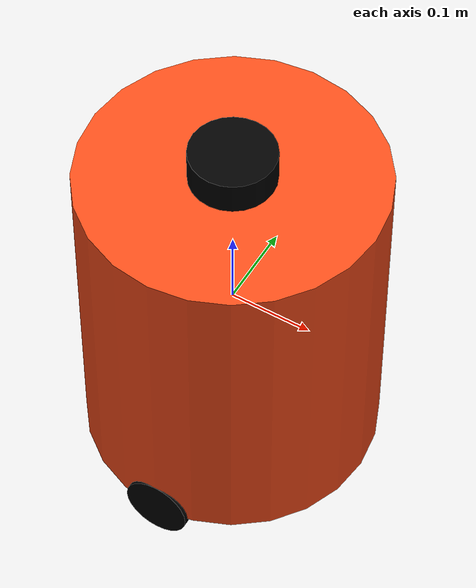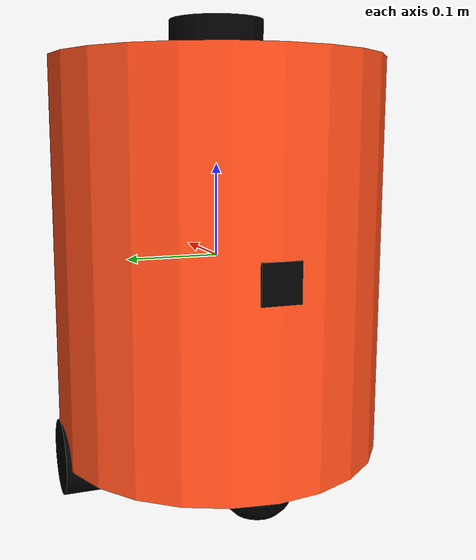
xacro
<?xml version="1.0"?>
<robot xmlns:xacro="http://www.ros.org/wiki/xacro"  name="tb2_master">

    <xacro:include filename="robot_core.xacro"/>

    <xacro:include filename="gazebo_control.xacro"/>

    <xacro:include filename="lidar.xacro"/>

    <xacro:include filename="depth_camera.xacro"/>

</robot>

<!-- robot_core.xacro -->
<robot xmlns:xacro="http://www.ros.org/wiki/xacro">

	<xacro:include filename="inertial_macros.xacro" />

    <material name="white">
		<color rgba="1 1 1 1" />
    </material>

    <material name="red">
		<color rgba="1 0 0 1" />
    </material>

    <material name="orange">
		<color rgba="1 0.3 0.1 1" />
    </material>

    <material name="blue">
		<color rgba="0.2 0.2 1 1" />
    </material>

    <material name="black">
		<color rgba="0 0 0 1" />
    </material>

    <!-- BASE_LINK -->

    <link name="base_link">
    </link>

	<link name="base_footprint">
	</link>

	<joint name="base_footprint_joint" type="fixed">
		<parent link="base_footprint" />
		<child  link="base_link" />
		<origin xyz="0 0 0" rpy="0 0 0" />
	</joint>

    <!-- CHASSIS -->

    <link name="chassis">
    	<visual>
			<origin xyz="0 0 0" />
    	    <geometry>
				<cylinder radius="0.177" length="0.420" />
    	    </geometry>
			<material name="orange" />
    	</visual>
    	<collision>
			<origin xyz="0 0 0" />
    	    <geometry>
				<cylinder radius="0.177" length="0.420" />
    	    </geometry>
    	</collision>
    	<xacro:inertial_cylinder mass="0.5" length="0.420" radius="0.177">
			<origin xyz="0 0 0" rpy="0 0 0" />
    	</xacro:inertial_cylinder>
    </link>

    <gazebo reference="chassis">
        <material>Gazebo/Orange</material>
    </gazebo>

    <joint name="chassis_joint" type="fixed">
		<parent link="base_link" />
		<child link="chassis" />
		<origin xyz="0 0 0" />
    </joint>

    <!-- LEFT_WHEEL -->

    <link name="left_wheel">
    	<visual>
    	    <geometry>
				<cylinder radius="0.04" length="0.04" />
    	    </geometry>
			<material name="black" />
    	</visual>
    	<collision>
    	    <geometry>
				<cylinder radius="0.04" length="0.04" />
    	    </geometry>
    	</collision>
    	<xacro:inertial_cylinder mass="0.1" length="0.04" radius="0.04">
			<origin xyz="0 0 0" rpy="0 0 0" />
    	</xacro:inertial_cylinder>
    </link>

    <gazebo reference="left_wheel">
        <material>Gazebo/Black</material>
    </gazebo>

    <joint name="left_wheel_joint" type="continuous">
		<parent link="chassis" />
		<child link="left_wheel" />
		<origin xyz="0 0.157 -0.210" rpy="-${pi/2} 0 0" />
		<axis xyz="0 0 1" />
    </joint>

    <!-- RIGHT_WHEEL -->

    <link name="right_wheel">
    	<visual>
    	    <geometry>
				<cylinder radius="0.04" length="0.04" />
    	    </geometry>
			<material name="black" />
    	</visual>
    	<collision>
    	    <geometry>
				<cylinder radius="0.04" length="0.04" />
    	    </geometry>
    	</collision>
    	<xacro:inertial_cylinder mass="0.1" length="0.04" radius="0.04">
			<origin xyz="0 0 0" rpy="0 0 0" />
    	</xacro:inertial_cylinder>
    </link>

    <gazebo reference="right_wheel">
        <material>Gazebo/Black</material>
    </gazebo>

    <joint name="right_wheel_joint" type="continuous">
		<parent link="chassis" />
		<child link="right_wheel" />
		<origin xyz="0 -0.157 -0.210" rpy="${pi/2} 0 0" />
		<axis xyz="0 0 -1" />
    </joint>

    <!-- CASTER WHEEL -->

    <link name="caster_wheel_forward">
        <visual>
            <geometry>
				<sphere radius="0.04" />
    	    </geometry>
			<material name="black" />
    	</visual>
    	<collision>
            <geometry>
				<sphere radius="0.04" />
    	    </geometry>
    	</collision>
    	<xacro:inertial_sphere mass="0.1" radius="0.04">
			<origin xyz="0 0 0" rpy="0 0 0" />
    	</xacro:inertial_sphere>
    </link>

    <gazebo reference="caster_wheel_forward">
        <material>Gazebo/Black</material>
		<mu1 value="0.001" />
		<mu2 value="0.001" />
    </gazebo>

    <joint name="caster_wheel_forward_joint" type="fixed">
		<parent link="chassis" />
		<child link="caster_wheel_forward" />
		<origin xyz="0.12 0 -0.210" />
    </joint>

	<link name="caster_wheel_backward">
		<visual>
			<geometry>
				<sphere radius="0.04" />
			</geometry>
			<material name="black" />
		</visual>
		<collision>
			<geometry>
				<sphere radius="0.04" />
			</geometry>
		</collision>
		<xacro:inertial_sphere mass="0.1" radius="0.04">
			<origin xyz="0 0 0" rpy="0 0 0" />
		</xacro:inertial_sphere>
	</link>

	<gazebo reference="caster_wheel_backward">
		<material>Gazebo/Black</material>
		<mu1 value="0.001" />
		<mu2 value="0.001" />
	</gazebo>

	<joint name="caster_wheel_backward_joint" type="fixed">
		<parent link="chassis" />
		<child link="caster_wheel_backward" />
		<origin xyz="-0.12 0 -0.210" />
	</joint>

</robot>

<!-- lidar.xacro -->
<robot xmlns:xacro="http://www.ros.org/wiki/xacro">

    <link name="laser_frame">
        <visual>
    	    <geometry>
    	        <cylinder radius="0.05" length="0.04"/>
    	    </geometry>
    	    <material name="black"/>
    	</visual>
    	<collision>
    	    <geometry>
    	        <cylinder radius="0.05" length="0.04"/>
    	    </geometry>
    	</collision>
    	<xacro:inertial_cylinder mass="0.1" length="0.04" radius="0.05">
    	    <origin xyz="0 0 0" rpy="0 0 0"/>
    	</xacro:inertial_cylinder>
    </link>

    <gazebo reference="laser_frame">
        <material>Gazebo/Black</material>
        <sensor name="laser" type="ray">
            <pose>0 0 0 0 0 0</pose>
            <visualize>false</visualize>
            <update_rate>10</update_rate>
            <ray>
                <scan>
                    <horizontal>
                        <samples>360</samples>
                        <min_angle>-3.14</min_angle>
                        <max_angle>3.14</max_angle>
                    </horizontal>
                </scan>
                <range>
                    <min>0.3</min>
                    <max>12</max>
                </range>
            </ray>
            <plugin name="laser_controller" filename="libgazebo_ros_ray_sensor.so">
                <ros>
                    <argument>~/out:=scan</argument>
                </ros>
                <output_type>sensor_msgs/LaserScan</output_type>
                <frame_name>laser_frame</frame_name>
            </plugin>
        </sensor>
    </gazebo>

    <joint name="laser_joint" type="fixed">
        <parent link="chassis"/>
        <child link="laser_frame"/>
        <origin xyz="0 0 0.230" rpy="0 0 0"/>
    </joint>

</robot>

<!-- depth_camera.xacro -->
<robot xmlns:xacro="http://www.ros.org/wiki/xacro">

            <joint name="camera_joint" type="fixed">
                <parent link="chassis" />
                <child link="camera_link" />
                <origin xyz="-0.127 0 0" rpy="0 0 ${pi}" />
            </joint>

            <link name="camera_link">
                <visual>
                    <geometry>
                        <box size="0.1 0.04 0.04" />
                    </geometry>
                    <material name="black" />
                </visual>
            </link>

            <joint name="camera_optical_joint" type="fixed">
                <parent link="camera_link" />
                <child link="camera_link_optical" />
                <origin xyz="0 0 0" rpy="${-pi/2} 0 ${-pi/2}" />
            </joint>

            <link name="camera_link_optical"></link>

            <gazebo reference="camera_link">

                <material>Gazebo/Black</material>

                <sensor name="camera" type="depth">
                    <pose> 0 0 0 0 0 0 </pose>
                    <visualize>true</visualize>
                    <update_rate>10</update_rate>
                    <camera>
                        <horizontal_fov>1.089</horizontal_fov>
                        <image>
                            <format>B8G8R8</format>
                            <width>640</width>
                            <height>480</height>
                        </image>
                        <clip>
                            <near>0.05</near>
                            <far>8.0</far>
                        </clip>
                    </camera>
                    <plugin name="camera_controller" filename="libgazebo_ros_camera.so">
                        <frame_name>camera_link_optical</frame_name>
                        <min_depth>0.1</min_depth>
                        <max_depth>100.0</max_depth>
                    </plugin>
                </sensor>
            </gazebo>
</robot>
